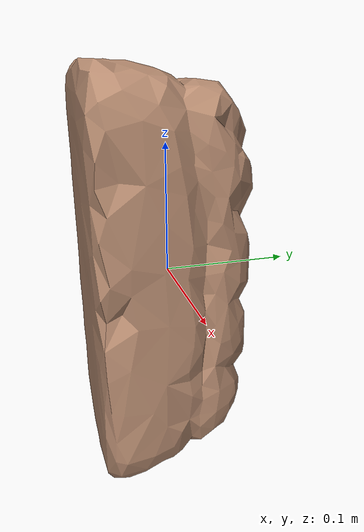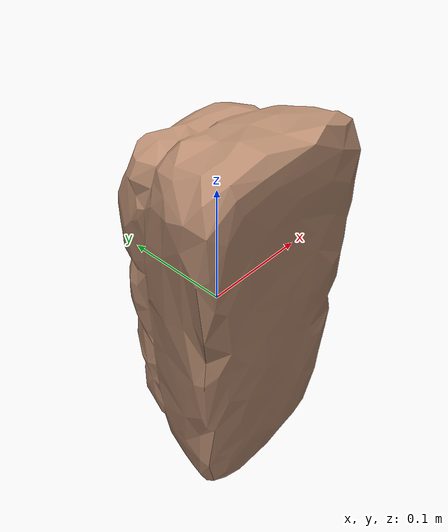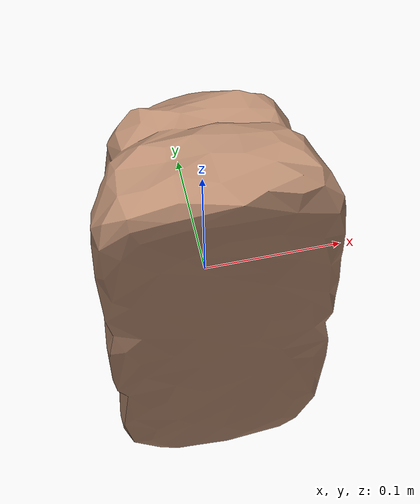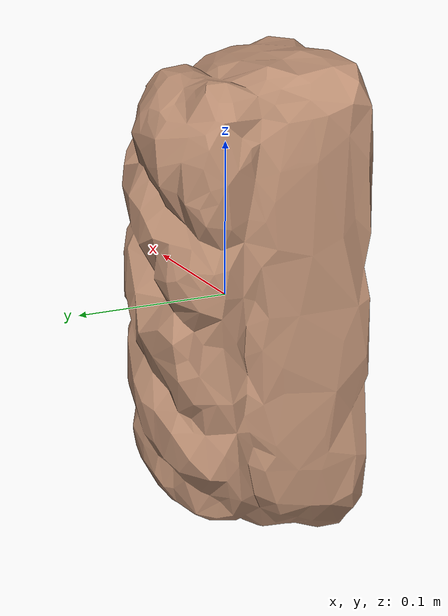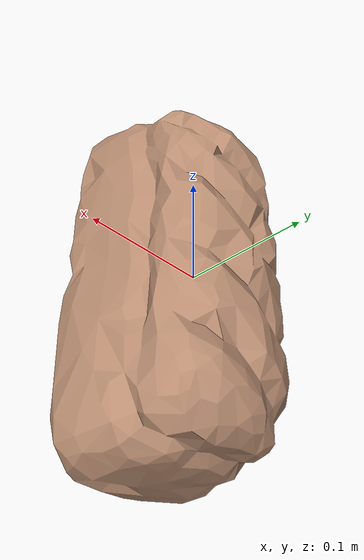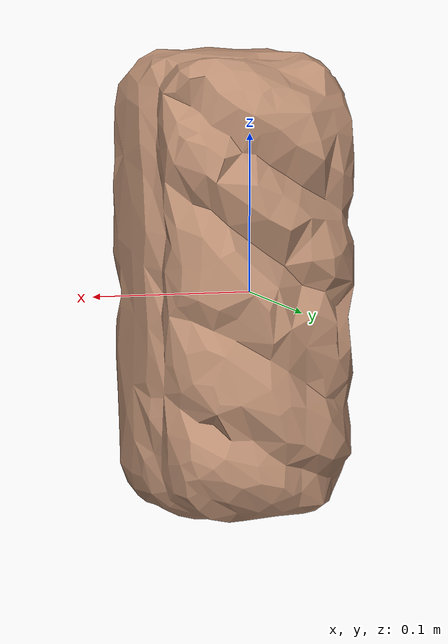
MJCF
<mujoco model="Bread_12">
  <compiler autolimits="true" boundmass="0.01" angle="radian"/>
  <default>
    <default class="/">
      <default class="__VISUAL_MJT__">
        <geom contype="0" conaffinity="0" group="0"/>
      </default>
      <default class="__STRUCTURAL_MJT__">
        <geom contype="8" conaffinity="15" group="4" friction="0.90000000000000002 0.90000000000000002 0.001" solref="0.025000000000000001 1" solimp="0.998 0.998 0.001"/>
      </default>
      <default class="__DYNAMIC_MJT__">
        <geom contype="1" conaffinity="15" group="4" friction="0.90000000000000002 0.90000000000000002 0.001" solref="0.025000000000000001 1" solimp="0.998 0.998 0.001"/>
      </default>
    </default>
  </default>
  <asset>
    <texture name="Bread5_Mat2" type="2d" file="Bread5_AlbedoTransparency.png"/>
    <material name="material_Bread5_Mat2" class="/" texture="Bread5_Mat2" specular="0.5" shininess="0.5" rgba="0.94699999999999995 0.75152129999999995 0.63970590000000005 1"/>
    <mesh name="Bread_12_bread5_b_mesh" class="/" file="Bread_12_bread5_b_mesh/Bread_12_bread5_b_mesh.obj" scale="1 1 1"/>
  </asset>
  <worldbody>
    <body name="Bread_12">
      <joint name="Bread_12_free" class="/" type="free" pos="0 0 0" axis="0 0 1" stiffness="0" range="0 0" armature="0" damping="0.10000000000000001" frictionloss="0"/>
      <body name="Bread_12_bread5_b_mesh" pos="-0 -0.0014 0" quat="1 0 0 0">
        <geom name="Bread_12_bread5_b_mesh" class="__VISUAL_MJT__" type="mesh" material="material_Bread5_Mat2" shellinertia="false" mesh="Bread_12_bread5_b_mesh"/>
        <geom name="Bread_12_PrimitiveCollider_0" class="__DYNAMIC_MJT__" type="box" size="0.078469589352607727 0.033313274383544922 0.15628343820571899" rgba="0 1 0 1" pos="-0 -0.030840396881103516 0" quat="1 0 0 0"/>
        <geom name="Bread_12_PrimitiveCollider_1" class="__DYNAMIC_MJT__" type="capsule" size="0.063585266470909119 0.082771345973014832" rgba="0 1 0 1" pos="0.0007781982421875 0.0033726096153259277 1.0728836059570312e-06" quat="1.517286444557021e-06 0.99999999999884892 0 0"/>
      </body>
    </body>
  </worldbody>
</mujoco>
